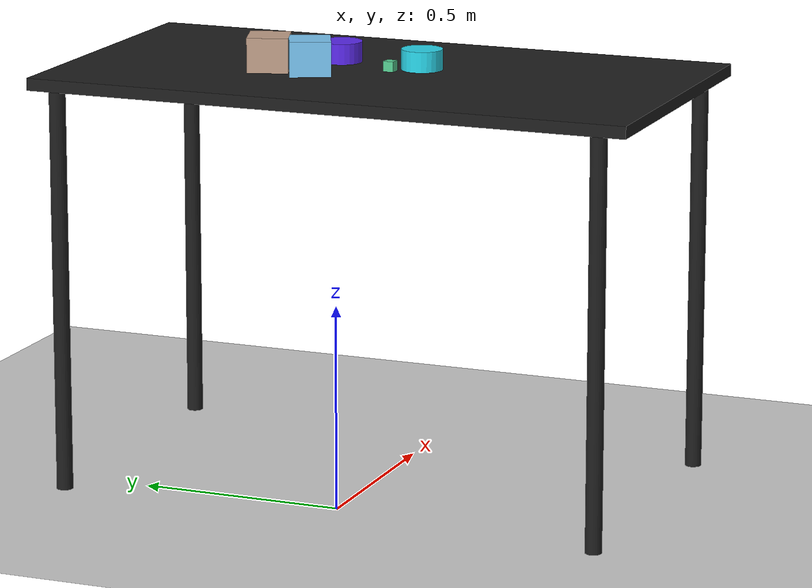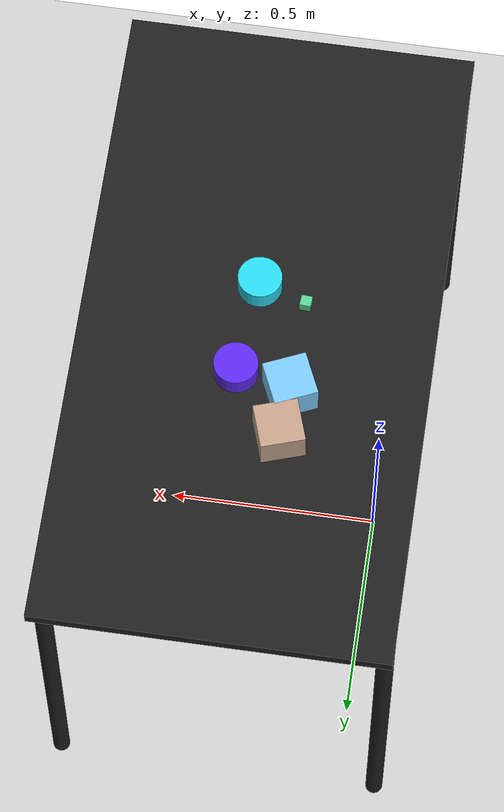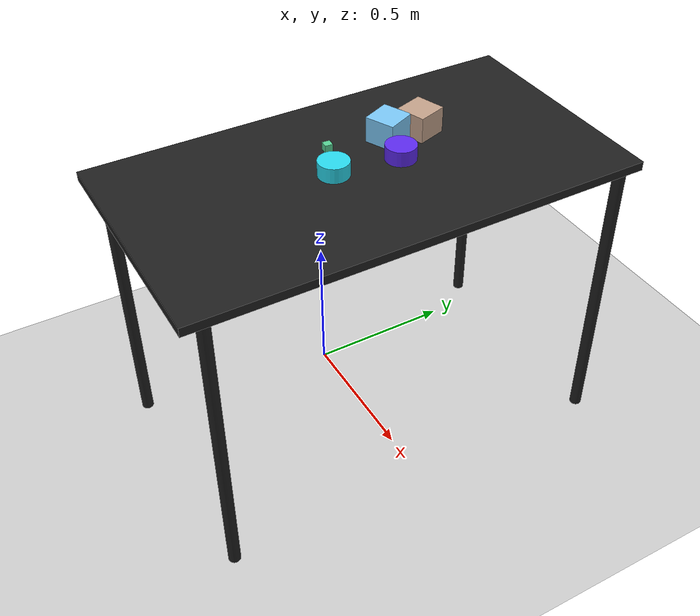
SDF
<?xml version="1.0" ?>
<sdf version="1.6">
  <world name="arm_world">
    <plugin filename="gz-sim-physics-system" name="gz::sim::systems::Physics">
      <engine>
        <filename>libgz-physics-bullet-featherstone-plugin.so</filename>
      </engine>
    </plugin>
    <plugin filename="gz-sim-user-commands-system" name="gz::sim::systems::UserCommands"/>
    <plugin filename="gz-sim-scene-broadcaster-system" name="gz::sim::systems::SceneBroadcaster"/>
    <plugin filename="gz-sim-sensors-system" name="gz::sim::systems::Sensors">
      <render_engine>ogre2</render_engine>
    </plugin>
    <gravity>0.0 0.0 -9.8</gravity>
    <scene>
      <shadows>false</shadows>
    </scene>
    <gui>
      <camera name="user_camera">
        <pose>0.75 -0.75 1.4 0 0.29 2.21</pose>
      </camera>
    </gui>
    <include>
      <uri>https://fuel.gazebosim.org/1.0/OpenRobotics/models/Sun</uri>
    </include>
    <model name="table">
      <static>true</static>
      <include>
        <uri>model://table</uri>
      </include>
      <pose>0.29 0 0 0 0 1.5708</pose>
    </model>
    <model name="ground_plane">
      <static>true</static>
      <link name="link">
        <collision name="collision">
          <geometry>
            <plane>
              <normal>0 0 1</normal>
            </plane>
          </geometry>
          <surface>
            <friction>
              <ode>
                <mu>1.0</mu>
                <mu2>1.0</mu2>
              </ode>
            </friction>
          </surface>
        </collision>
        <visual name="visual">
          <geometry>
            <plane>
              <normal>0 0 1</normal>
              <size>100 100</size>
            </plane>
          </geometry>
          <material>
            <ambient>0.8 0.8 0.8 1</ambient>
            <diffuse>0.8 0.8 0.8 1</diffuse>
            <specular>0.8 0.8 0.8 1</specular>
          </material>
        </visual>
      </link>
    </model>
    <model name="cylinder_l_0">
      <pose>0.321 0.117 1.05 0 0 0.77</pose>
      <link name="cylinder_l_0_link">
        <collision name="cylinder_l_0_collision">
          <geometry>
            <cylinder>
              <radius>0.05</radius>
              <length>0.05</length>
            </cylinder>
          </geometry>
        </collision>
        <visual name="cylinder_l_0_visual">
          <geometry>
            <cylinder>
              <radius>0.05</radius>
              <length>0.05</length>
            </cylinder>
          </geometry>
          <material>
            <ambient>0.36 0.16 0.93 1</ambient>
            <diffuse>0.36 0.16 0.93 1</diffuse>
          </material>
        </visual>
        <velocity_decay>
          <linear>1</linear>
          <angular>1</angular>
        </velocity_decay>
      </link>
    </model>
    <model name="cube_l_1">
      <pose>0.196 0.148 1.05 0 0 1.99</pose>
      <link name="cube_l_1_link">
        <collision name="cube_l_1_collision">
          <geometry>
            <box>
              <size>0.1 0.1 0.1</size>
            </box>
          </geometry>
        </collision>
        <visual name="cube_l_1_visual">
          <geometry>
            <box>
              <size>0.1 0.1 0.1</size>
            </box>
          </geometry>
          <material>
            <ambient>0.48 0.78 0.96 1</ambient>
            <diffuse>0.48 0.78 0.96 1</diffuse>
          </material>
        </visual>
        <velocity_decay>
          <linear>1</linear>
          <angular>1</angular>
        </velocity_decay>
      </link>
    </model>
    <model name="cube_s_2">
      <pose>0.189 -0.062 1.05 0 0 3.06</pose>
      <link name="cube_s_2_link">
        <collision name="cube_s_2_collision">
          <geometry>
            <box>
              <size>0.025 0.025 0.025</size>
            </box>
          </geometry>
        </collision>
        <visual name="cube_s_2_visual">
          <geometry>
            <box>
              <size>0.025 0.025 0.025</size>
            </box>
          </geometry>
          <material>
            <ambient>0.34 0.82 0.58 1</ambient>
            <diffuse>0.34 0.82 0.58 1</diffuse>
          </material>
        </visual>
        <velocity_decay>
          <linear>1</linear>
          <angular>1</angular>
        </velocity_decay>
      </link>
    </model>
    <model name="cylinder_l_3">
      <pose>0.298 -0.1 1.05 0 0 0.85</pose>
      <link name="cylinder_l_3_link">
        <collision name="cylinder_l_3_collision">
          <geometry>
            <cylinder>
              <radius>0.05</radius>
              <length>0.05</length>
            </cylinder>
          </geometry>
        </collision>
        <visual name="cylinder_l_3_visual">
          <geometry>
            <cylinder>
              <radius>0.05</radius>
              <length>0.05</length>
            </cylinder>
          </geometry>
          <material>
            <ambient>0.16 0.85 0.93 1</ambient>
            <diffuse>0.16 0.85 0.93 1</diffuse>
          </material>
        </visual>
        <velocity_decay>
          <linear>1</linear>
          <angular>1</angular>
        </velocity_decay>
      </link>
    </model>
    <model name="cube_l_4">
      <pose>0.205 0.258 1.05 0 0 0.32</pose>
      <link name="cube_l_4_link">
        <collision name="cube_l_4_collision">
          <geometry>
            <box>
              <size>0.1 0.1 0.1</size>
            </box>
          </geometry>
        </collision>
        <visual name="cube_l_4_visual">
          <geometry>
            <box>
              <size>0.1 0.1 0.1</size>
            </box>
          </geometry>
          <material>
            <ambient>0.76 0.63 0.54 1</ambient>
            <diffuse>0.76 0.63 0.54 1</diffuse>
          </material>
        </visual>
        <velocity_decay>
          <linear>1</linear>
          <angular>1</angular>
        </velocity_decay>
      </link>
    </model>
  </world>
</sdf>

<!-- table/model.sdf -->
<sdf version="1.5">
  <model name="table">
    <static>true</static>
    <link name="link">
      <collision name="surface">
        <pose>0 0 1.0 0 0 0</pose>
        <geometry>
          <box>
            <size>1.5 0.8 0.03</size>
          </box>
        </geometry>
        <surface>
          <friction>
            <ode>
              <mu>0.6</mu>
              <mu2>0.6</mu2>
            </ode>
          </friction>
        </surface>
      </collision>
      <visual name="surface">
        <pose>0 0 1.0 0 0 0</pose>
        <geometry>
          <box>
            <size>1.5 0.8 0.03</size>
          </box>
        </geometry>
        <material>
          <script>
            <uri>file://media/materials/scripts/gazebo.material</uri>
            <name>Gazebo/Black</name>
          </script>
        </material>
      </visual>
      <collision name="front_left_leg">
        <pose>0.68 0.38 0.5 0 0 0</pose>
        <geometry>
          <cylinder>
            <radius>0.02</radius>
            <length>1.0</length>
          </cylinder>
        </geometry>
      </collision>
      <visual name="front_left_leg">
        <pose>0.68 0.38 0.5 0 0 0</pose>
        <geometry>
          <cylinder>
            <radius>0.02</radius>
            <length>1.0</length>
          </cylinder>
        </geometry>
        <material>
          <script>
            <uri>file://media/materials/scripts/gazebo.material</uri>
            <name>Gazebo/Black</name>
          </script>
        </material>
      </visual>
      <collision name="front_right_leg">
        <pose>0.68 -0.38 0.5 0 0 0</pose>
        <geometry>
          <cylinder>
            <radius>0.02</radius>
            <length>1.0</length>
          </cylinder>
        </geometry>
      </collision>
      <visual name="front_right_leg">
        <pose>0.68 -0.38 0.5 0 0 0</pose>
        <geometry>
          <cylinder>
            <radius>0.02</radius>
            <length>1.0</length>
          </cylinder>
        </geometry>
        <material>
          <script>
            <uri>file://media/materials/scripts/gazebo.material</uri>
            <name>Gazebo/Black</name>
          </script>
        </material>
      </visual>
      <collision name="back_right_leg">
        <pose>-0.68 -0.38 0.5 0 0 0</pose>
        <geometry>
          <cylinder>
            <radius>0.02</radius>
            <length>1.0</length>
          </cylinder>
        </geometry>
      </collision>
      <visual name="back_right_leg">
        <pose>-0.68 -0.38 0.5 0 0 0</pose>
        <geometry>
          <cylinder>
            <radius>0.02</radius>
            <length>1.0</length>
          </cylinder>
        </geometry>
        <material>
          <script>
            <uri>file://media/materials/scripts/gazebo.material</uri>
            <name>Gazebo/Black</name>
          </script>
        </material>
      </visual>
      <collision name="back_left_leg">
        <pose>-0.68 0.38 0.5 0 0 0</pose>
        <geometry>
          <cylinder>
            <radius>0.02</radius>
            <length>1.0</length>
          </cylinder>
        </geometry>
      </collision>
      <visual name="back_left_leg">
        <pose>-0.68 0.38 0.5 0 0 0</pose>
        <geometry>
          <cylinder>
            <radius>0.02</radius>
            <length>1.0</length>
          </cylinder>
        </geometry>
        <material>
          <script>
            <uri>file://media/materials/scripts/gazebo.material</uri>
            <name>Gazebo/Black</name>
          </script>
        </material>
      </visual>
    </link>
  </model>
</sdf>
